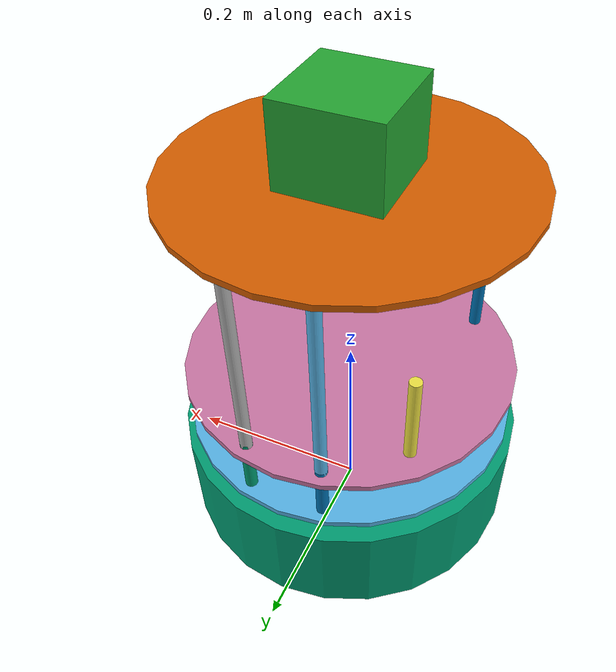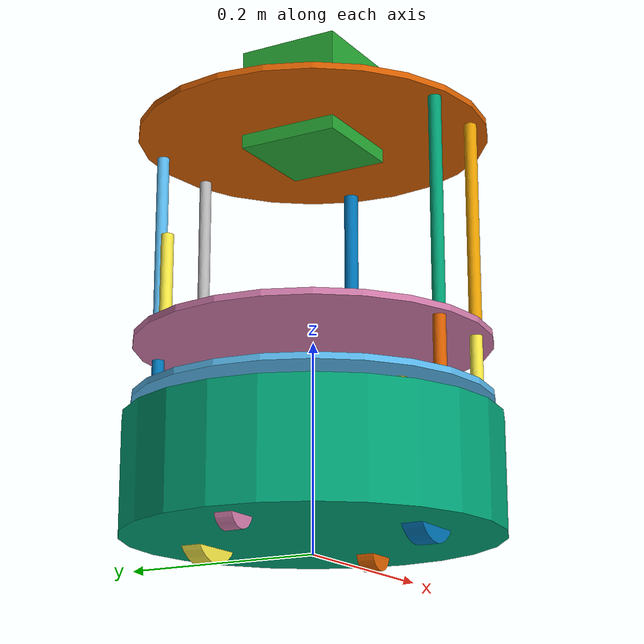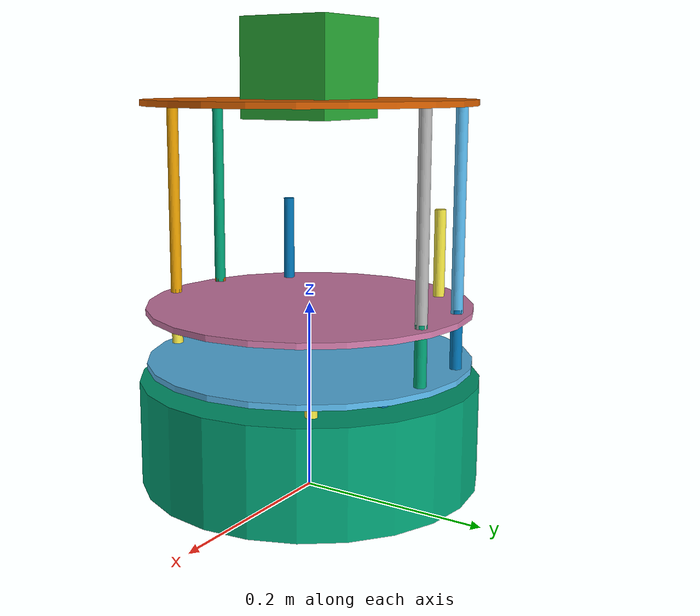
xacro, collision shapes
<?xml version="1.0"?>
<!--
    - Base      : kobuki
    - Stacks    : hexagons
    - 3d Sensor : sensor_asus_xtion_pro
-->
<robot name="turtlebot" xmlns:xacro="http://ros.org/wiki/xacro">

  <xacro:include filename="$(find turtlebot_description)/urdf/turtlebot_library.urdf.xacro" />

  <kobuki/>
  <stack_hexagons                 parent="base_link"/>
  <sensor_asus_xtion_pro          parent="base_link"/>
</robot>

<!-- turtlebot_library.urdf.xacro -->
<!--
  The complete turtlebot library of xacros for easy reference
 -->
<robot xmlns:xacro="http://ros.org/wiki/xacro">
  <!-- General -->
  <xacro:include filename="$(find turtlebot_description)/urdf/common_properties.urdf.xacro"/>
  <!-- Bases -->
  <xacro:include filename="$(find turtlebot_description)/urdf/bases/create.urdf.xacro"/>
  <xacro:include filename="$(find turtlebot_description)/urdf/bases/kobuki.urdf.xacro" />
  <!-- Stacks -->
  <xacro:include filename="$(find turtlebot_description)/urdf/stacks/circles.urdf.xacro"/>
  <xacro:include filename="$(find turtlebot_description)/urdf/stacks/hexagons.urdf.xacro"/>
  <!-- 3D Sensors -->
  <xacro:include filename="$(find turtlebot_description)/urdf/sensors/kinect.urdf.xacro"/>
  <xacro:include filename="$(find turtlebot_description)/urdf/sensors/asus_xtion_pro.urdf.xacro"/>
  <xacro:include filename="$(find turtlebot_description)/urdf/sensors/asus_xtion_pro_offset.urdf.xacro"/>
  <xacro:include filename="$(find turtlebot_description)/urdf/sensors/realsense_d435.urdf.xacro"/>
</robot>

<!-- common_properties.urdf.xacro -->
<!--
  Various useful properties such as constants and materials
 -->
<robot name="xacro_properties" xmlns:xacro="http://ros.org/wiki/xacro">
<!--
    These properties must be observed by any machine
    that wants to be defined as a turtlebot. Refer
    to the REP for more details.

    http://www.ros.org/reps/rep-0119.html
   -->

	<xacro:property name="cam_px" value="-0.087" />
	<xacro:property name="cam_pz" value="0.2870" />
	<xacro:property name="cam_or" value="0" />
	<xacro:property name="cam_op" value="0" />
	<xacro:property name="cam_oy" value="0" />

  <xacro:property name="M_PI" value="3.1415926535897931" />
  <xacro:property name="material_white">
    <material name="white">
      <color rgba="1 1 1 1"/>
    </material>
  </xacro:property>
  <xacro:property name="material_grey">
    <material name="grey">
      <color rgba="0.5 0.5 0.5 1"/>
    </material>
  </xacro:property>
  <xacro:property name="material_light_grey">
    <material name="light_grey">
      <color rgba="0.6 0.6 0.6 1"/>
    </material>
  </xacro:property>
  <xacro:property name="material_dark_grey">
    <material name="dark_grey">
      <color rgba="0.3 0.3 0.3 1"/>
    </material>
  </xacro:property>
  <xacro:property name="material_black">
    <material name="black">
      <color rgba="0.1 0.1 0.1 1"/>
    </material>
  </xacro:property>
  <xacro:property name="material_red">
    <material name="red">
      <color rgba="1 0 0 1"/>
    </material>
  </xacro:property>
  <xacro:property name="material_green">
    <material name="green">
      <color rgba="0.0 0.8 0.0 1"/>
    </material>
  </xacro:property>
  <xacro:property name="material_blue">
    <material name="blue">
      <color rgba="0.0 0.0 1.0 1"/>
    </material>
  </xacro:property>
  <xacro:property name="material_grey_blue">
    <material name="grey_blue">
      <color rgba="0.4 0.4 1.0 1"/>
    </material>
  </xacro:property>
  <xacro:property name="material_orange">
    <material name="orange">
      <color rgba="1.0 0.7 0.0 1"/>
    </material>
  </xacro:property>
</robot>

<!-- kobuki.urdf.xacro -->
<robot name="kobuki" xmlns:xacro="http://ros.org/wiki/xacro">
  <xacro:include filename="$(find turtlebot_description)/urdf/bases/kobuki_gazebo.urdf.xacro"/>

  <!-- Kobuki -->
  <xacro:macro name="kobuki">
    <link name="base_footprint"/>
    <joint name="laser_sensor_joint" type="fixed">
    	<origin xyz="0.0 0.0 0.430" rpy="0 0 0"/>
    	<parent link="base_link"/>
    	<child link="laser_sensor_link"/>
    </joint>
    <link name="laser_sensor_link">
	    <inertial>
		    <mass value="1e-5"/>
		    <origin xyz="0 0 0" rpy="0 0 0"/>
		    <inertia ixx="1e-6" ixy="0" ixz="0" iyy="1e-6" iyz="0" izz="1e-6"/>
	    </inertial>
	    <collision>
		    <origin xyz="0 0 0" rpy="0 0 0"/>
		    <geometry>
			    <box size="0.1 0.1 0.1"/>
		    </geometry>
	    </collision>
	    <visual>
		    <origin xyz="0 0 -0.03" rpy="1.570796 0 -1.570796"/>
		    <geometry>
          <mesh filename="package://turtlebot_description/meshes/sensors/rplidar.dae" scale="0.001 0.001 0.001" />
        </geometry>
        <material name="Green" />
	    </visual>
    </link>

    <joint name="base_joint" type="fixed">
      <origin xyz="0 0 0.0102" rpy="0 0 0" />
      <parent link="base_footprint"/>
      <child link="base_link" />
    </joint>
    <link name="base_link">
      <visual>
        <geometry>
          <!-- new mesh -->
          <mesh filename="package://turtlebot_description/meshes/kobuki_body.dae" />
        </geometry>
        <origin xyz="0.001 0 0.05199" rpy="0 0 0"/>
      </visual>
      <collision>
        <geometry>
          <cylinder length="0.10938" radius="0.178"/>
        </geometry>
        <origin xyz="0.0 0 0.05949" rpy="0 0 0"/>
      </collision>
      <inertial>
        <!-- COM experimentally determined -->
        <origin xyz="0.01 0 0"/>
        <mass value="2.4"/> <!-- 2.4/2.6 kg for small/big battery pack -->
        <inertia ixx="0.019995" ixy="0.0" ixz="0.0"
                 iyy="0.019995" iyz="0.0"
                 izz="0.03675" />
      </inertial>
    </link>

    <joint name="wheel_left_joint" type="continuous">
      <parent link="base_link"/>
      <child link="wheel_left_link"/>
      <origin xyz="0.00 ${0.23/2} 0.0250" rpy="${-M_PI/2} 0 0"/>
      <axis xyz="0 0 1"/>
    </joint>
    <link name="wheel_left_link">
      <visual>
        <geometry>
          <mesh filename="package://turtlebot_description/meshes/kobuki_wheel.dae"/>
        </geometry>
        <origin xyz="0 0 0" rpy="0 0 0"/>
      </visual>
      <collision>
        <geometry>
          <cylinder length="0.0206" radius="0.0352"/>
        </geometry>
        <origin rpy="0 0 0" xyz="0 0 0"/>
      </collision>
      <inertial>
        <mass value="0.01" />
        <origin xyz="0 0 0" />
        <inertia ixx="0.001" ixy="0.0" ixz="0.0"
                 iyy="0.001" iyz="0.0"
                 izz="0.001" />
      </inertial>
    </link>

    <joint name="wheel_right_joint" type="continuous">
      <parent link="base_link"/>
      <child link="wheel_right_link"/>
      <origin xyz="0.00 -${0.23/2} 0.0250" rpy="${-M_PI/2} 0 0"/>
      <axis xyz="0 0 1"/>
    </joint>
    <link name="wheel_right_link">
      <visual>
        <geometry>
          <mesh filename="package://turtlebot_description/meshes/kobuki_wheel.dae"/>
        </geometry>
        <origin xyz="0 0 0" rpy="0 0 0"/>
      </visual>
      <collision>
        <geometry>
          <cylinder length="0.0206" radius="0.0350"/>
        </geometry>
        <origin rpy="0 0 0" xyz="0 0 0"/>
      </collision>
      <inertial>
        <mass value="0.01" />
        <origin xyz="0 0 0" />
        <inertia ixx="0.001" ixy="0.0" ixz="0.0"
                 iyy="0.001" iyz="0.0"
                 izz="0.001" />
      </inertial>
    </link>

    <joint name="caster_front_joint" type="fixed">
      <parent link="base_link"/>
      <child link="caster_front_link"/>
      <origin xyz="0.115 0.0 0.007" rpy="${-M_PI/2} 0 0"/>
    </joint>
    <link name="caster_front_link">
      <collision>
        <geometry>
          <cylinder length="0.0176" radius="0.017"/>
        </geometry>
        <origin rpy="0 0 0" xyz="0 0 0"/>
      </collision>
      <inertial>
        <mass value="0.01" />
        <origin xyz="0 0 0" />
        <inertia ixx="0.001" ixy="0.0" ixz="0.0"
                 iyy="0.001" iyz="0.0"
                 izz="0.001" />
      </inertial>
    </link>

    <joint name="caster_back_joint" type="fixed">
      <parent link="base_link"/>
      <child link="caster_back_link"/>
      <origin xyz="-0.135 0.0 0.009" rpy="${-M_PI/2} 0 0"/>
    </joint>
    <link name="caster_back_link">
      <collision>
        <geometry>
          <cylinder length="0.0176" radius="0.017"/>
        </geometry>
        <origin rpy="0 0 0" xyz="0 0 0"/>
      </collision>
      <inertial>
        <mass value="0.01" />
        <origin xyz="0 0 0" />
        <inertia ixx="0.001" ixy="0.0" ixz="0.0"
                 iyy="0.001" iyz="0.0"
                 izz="0.001" />
      </inertial>
    </link>

    <!-- Kobuki's sensors -->
    <joint name="gyro_joint" type="fixed">
      <axis xyz="0 1 0"/>
      <origin xyz="0.056 0.062 0.0202" rpy="0 0 0"/>
      <parent link="base_link"/>
      <child link="gyro_link"/>
    </joint>
    <link name="gyro_link">
      <inertial>
        <mass value="0.001"/>
        <origin xyz="0 0 0" rpy="0 0 0"/>
        <inertia ixx="0.0001" ixy="0" ixz="0"
                 iyy="0.000001" iyz="0"
                 izz="0.0001"/>
      </inertial>
    </link>

    <joint name="cliff_sensor_left_joint" type="fixed">
      <origin xyz="0.08734 0.13601 0.0214" rpy="0 ${M_PI/2} 0" />
      <parent link="base_link"/>
      <child link="cliff_sensor_left_link" />
    </joint>
    <link name="cliff_sensor_left_link">
      <inertial>
        <mass value="0.0001" />
        <origin xyz="0 0 0" />
        <inertia ixx="0.0001" ixy="0.0" ixz="0.0"
                 iyy="0.0001" iyz="0.0"
                 izz="0.0001" />
      </inertial>
    </link>

    <joint name="cliff_sensor_right_joint" type="fixed">
      <origin xyz="0.085 -0.13601 0.0214" rpy="0 ${M_PI/2} 0" />
      <parent link="base_link"/>
      <child link="cliff_sensor_right_link" />
    </joint>
    <link name="cliff_sensor_right_link">
      <inertial>
        <mass value="0.0001" />
        <origin xyz="0 0 0" />
        <inertia ixx="0.0001" ixy="0.0" ixz="0.0"
                 iyy="0.0001" iyz="0.0"
                 izz="0.0001" />
      </inertial>
    </link>

    <joint name="cliff_sensor_front_joint" type="fixed">
      <origin xyz="0.156 0.00 0.0214" rpy="0 ${M_PI/2} 0" />
      <parent link="base_link"/>
      <child link="cliff_sensor_front_link" />
    </joint>
    <link name="cliff_sensor_front_link">
      <inertial>
        <mass value="0.0001" />
        <origin xyz="0 0 0" />
        <inertia ixx="0.0001" ixy="0.0" ixz="0.0"
                 iyy="0.0001" iyz="0.0"
                 izz="0.0001" />
      </inertial>
    </link>

    <!-- Kobuki Gazebo simulation details -->
    <kobuki_sim/>

  </xacro:macro>
</robot>

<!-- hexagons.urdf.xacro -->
<!--
  Hexagon stacks
 -->
<robot name="stack_hexagons" xmlns:xacro="http://ros.org/wiki/xacro">

  <!-- Xacro properties -->
  <xacro:property name="M_SCALE" value="0.001"/>

  <!-- Xacro macros -->
  <!-- Pole macros -->
  <xacro:macro name="stack_bottom_pole" params="parent number x_loc y_loc z_loc">
    <joint name="pole_bottom_${number}_joint" type="fixed">
      <origin xyz="${x_loc} ${y_loc} ${z_loc}" rpy="0 0 0"/>
      <parent link="${parent}"/>
      <child link="pole_bottom_${number}_link"/>
    </joint>
    <link name="pole_bottom_${number}_link">
      <visual>
        <origin xyz="0 0 0" rpy="0 0 0"/>
        <geometry>
          <mesh filename="package://turtlebot_description/meshes/stacks/hexagons/pole_bottom.dae"/>
        </geometry>
      </visual>
      <collision>
        <origin xyz="0 0 0" rpy="0 0 0"/>
        <geometry>
          <cylinder length="0.0492" radius="0.006"/>
        </geometry>
      </collision>
      <inertial>
        <mass value="0.008"/>
        <origin xyz="0 0 0" rpy="0 0 0"/>
        <inertia ixx="0.000001686" ixy="0.0" ixz="0.0"
                 iyy="0.000001686" iyz="0.0"
                 izz="0.000000144"/>
      </inertial>
    </link>
  </xacro:macro>

  <xacro:macro name="stack_middle_pole" params="parent number x_loc y_loc z_loc">
    <joint name="pole_middle_${number}_joint" type="fixed">
      <origin xyz="${x_loc} ${y_loc} ${z_loc}" rpy="0 0 0" />
      <parent link="${parent}"/>
      <child link="pole_middle_${number}_link"/>
    </joint>
    <link name="pole_middle_${number}_link">
      <visual>
        <origin xyz="0 0 0" rpy="0 ${M_PI} 0"/>
        <geometry>
          <mesh filename="package://turtlebot_description/meshes/stacks/hexagons/pole_middle.dae"/>
        </geometry>
      </visual>
      <collision>
        <origin xyz="0 0 0" rpy="0 0 0"/>
        <geometry>
          <cylinder length="0.0608" radius="0.006"/>
        </geometry>
      </collision>
      <inertial>
        <mass value="0.012"/>
        <origin xyz="0 0 0"/>
        <inertia ixx="0.000003805" ixy="0.0" ixz="0.0"
                 iyy="0.000003805" iyz="0.0"
                 izz="0.000000216"/>
      </inertial>
    </link>
  </xacro:macro>

  <xacro:macro name="stack_top_pole" params="parent number x_loc y_loc z_loc">
    <joint name="pole_top_${number}_joint" type="fixed">
      <origin xyz="${x_loc} ${y_loc} ${z_loc}" rpy="0 0 0"/>
      <parent link="${parent}"/>
      <child link="pole_top_${number}_link"/>
    </joint>
    <link name="pole_top_${number}_link">
      <visual>
        <origin xyz=" 0 0 0" rpy="0 0 0"/>
        <geometry>
          <mesh filename="package://turtlebot_description/meshes/stacks/hexagons/pole_top.dae"/>
        </geometry>
      </visual>
      <collision>
        <origin xyz="0 0 0" rpy="0 0 0"/>
        <geometry>
          <cylinder length="0.2032" radius="0.006"/>
        </geometry>
      </collision>
      <inertial>
        <mass value="0.060"/>
        <origin xyz="0 0 0"/>
        <inertia ixx="0.000206991" ixy="0.0" ixz="0.0"
                 iyy="0.000206991" iyz="0.0"
                 izz="0.000001080"/>
      </inertial>
    </link>
  </xacro:macro>

  <xacro:macro name="stack_3d_sensor_pole" params="parent number x_loc y_loc z_loc">
    <joint name="pole_kinect_${number}_joint" type="fixed">
      <origin xyz="${x_loc} ${y_loc} ${z_loc}" rpy="0 0 0"/>
      <parent link="${parent}"/>
      <child link="pole_kinect_${number}_link"/>
    </joint>
    <link name="pole_kinect_${number}_link">
      <visual>
        <origin xyz="0 0 -0.01" rpy="0 0 0"/>
        <geometry>
          <mesh filename="package://turtlebot_description/meshes/sensors/sensor_pole.dae" />
        </geometry>
      </visual>
      <collision>
        <origin xyz="0 0 0" rpy="0 0 0"/>
        <geometry>
          <cylinder length="0.0936" radius="0.006"/>
        </geometry>
      </collision>
      <inertial>
        <mass value="0.020"/>
        <origin xyz="0 0 0"/>
        <inertia ixx="0.000014782" ixy="0.0" ixz="0.0"
                 iyy="0.000014782" iyz="0.0"
                 izz="0.000000360"/>
      </inertial>
    </link>
  </xacro:macro>

  <xacro:macro name="stack_hexagons" params="parent">
    <stack_bottom_pole parent="${parent}" number="0" x_loc= "0.120" y_loc= "0.082" z_loc="0.1028"/>
    <stack_bottom_pole parent="${parent}" number="1" x_loc= "0.055" y_loc= "0.120" z_loc="0.1028"/>
    <stack_bottom_pole parent="${parent}" number="2" x_loc="-0.055" y_loc= "0.120" z_loc="0.1028"/>
    <stack_bottom_pole parent="${parent}" number="3" x_loc= "0.120" y_loc="-0.082" z_loc="0.1028"/>
    <stack_bottom_pole parent="${parent}" number="4" x_loc= "0.055" y_loc="-0.120" z_loc="0.1028"/>
    <stack_bottom_pole parent="${parent}" number="5" x_loc="-0.055" y_loc="-0.120" z_loc="0.1028"/>

    <joint name="plate_bottom_joint" type="fixed">
      <origin xyz="0.02364 0.0 0.1306" rpy="0 0 0"/>
      <parent link="${parent}"/>
      <child link="plate_bottom_link"/>
    </joint>
    <link name="plate_bottom_link">
      <visual>
        <origin xyz="0 0 0" rpy="0 0 0"/>
        <geometry>
          <mesh filename="package://turtlebot_description/meshes/stacks/hexagons/plate_bottom.dae"/>
        </geometry>
      </visual>
      <collision>
        <origin xyz="-0.02364 0 0" rpy="0 0 0"/>
        <geometry>
          <cylinder length="0.006" radius="0.170"/>
        </geometry>
      </collision>
      <inertial>
        <mass value="0.520" />
        <origin xyz="0 0 0" />
        <inertia ixx="0.003328" ixy="0.0" ixz="0.0"
                 iyy="0.003328" iyz="0.0"
                 izz="0.006656" />
      </inertial>
    </link>

    <stack_middle_pole parent="${parent}" number="0" x_loc= "0.0381" y_loc= "0.1505" z_loc="0.1640"/>
    <stack_middle_pole parent="${parent}" number="1" x_loc= "0.0381" y_loc="-0.1505" z_loc="0.1640"/>
    <stack_middle_pole parent="${parent}" number="2" x_loc="-0.0381" y_loc= "0.1505" z_loc="0.1640"/>
    <stack_middle_pole parent="${parent}" number="3" x_loc="-0.0381" y_loc="-0.1505" z_loc="0.1640"/>

    <joint name="plate_middle_joint" type="fixed">
      <origin xyz="-0.01364 0.0 0.1874" rpy="0 0 0"/>
      <parent link="${parent}"/>
      <child link="plate_middle_link"/>
    </joint>
    <link name="plate_middle_link">
      <visual>
        <origin xyz="0 0 0" rpy="0 0 0"/>
        <geometry>
          <mesh filename="package://turtlebot_description/meshes/stacks/hexagons/plate_middle.dae"/>
        </geometry>
      </visual>
      <collision>
        <origin xyz="0.01364 0.0 0.0" rpy="0 0 0"/>
        <geometry>
          <cylinder length="0.006" radius="0.170"/>
        </geometry>
      </collision>
      <inertial>
        <mass value="0.520" />
        <origin xyz="0 0 0" />
        <inertia ixx="0.003328" ixy="0.0" ixz="0.0"
                 iyy="0.003328" iyz="0.0"
                 izz="0.006656" />
      </inertial>
    </link>

    <stack_top_pole parent="${parent}" number="0" x_loc= "0.0381" y_loc= "0.1505" z_loc="0.2920"/>
    <stack_top_pole parent="${parent}" number="1" x_loc= "0.0381" y_loc="-0.1505" z_loc="0.2920"/>
    <stack_top_pole parent="${parent}" number="2" x_loc="-0.0381" y_loc= "0.1505" z_loc="0.2920"/>
    <stack_top_pole parent="${parent}" number="3" x_loc="-0.0381" y_loc="-0.1505" z_loc="0.2920"/>
    <stack_3d_sensor_pole parent="${parent}" number="0" x_loc="-0.1024" y_loc= "0.098" z_loc="0.2372"/>
    <stack_3d_sensor_pole parent="${parent}" number="1" x_loc="-0.1024" y_loc="-0.098" z_loc="0.2372"/>

    <joint name="plate_top_joint" type="fixed">
      <origin xyz="-0.01364 0.0  0.3966" rpy="0 0 0"/>
      <parent link="${parent}"/>
      <child link="plate_top_link"/>
    </joint>
    <link name="plate_top_link">
      <visual>
        <origin xyz="0 0 0" rpy="0 0 0"/>
        <geometry>
          <mesh filename="package://turtlebot_description/meshes/stacks/hexagons/plate_top.dae"/>
        </geometry>
      </visual>
      <collision>
        <origin xyz="0.01364 0 0" rpy="0 0 0"/>
        <geometry>
          <cylinder length="0.006" radius="0.170"/>
        </geometry>
      </collision>
      <inertial>
        <mass value="0.520"/>
        <origin xyz="0 0 0"/>
        <inertia ixx="0.003328" ixy="0.0" ixz="0.0"
                 iyy="0.003328" iyz="0.0"
                 izz="0.006656" />
      </inertial>
    </link>
  </xacro:macro>
</robot>

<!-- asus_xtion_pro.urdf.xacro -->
<robot name="sensor_asus_xtion_pro" xmlns:xacro="http://ros.org/wiki/xacro">
  <xacro:include filename="$(find turtlebot_description)/urdf/sensors/camera_gazebo.urdf.xacro"/>
  <xacro:include filename="$(find turtlebot_description)/urdf/sensors/laser_gazebo.urdf.xacro"/>

  <!-- Xacro properties -->
  <xacro:property name="M_SCALE" value="0.001"/>
  <xacro:property name="asus_xtion_pro_cam_py" value="0.0205"/>
  <xacro:property name="asus_xtion_pro_depth_rel_rgb_py" value="0.0270" />
  <xacro:property name="asus_xtion_pro_cam_rel_rgb_py"   value="-0.0220" />

  <!-- Parameterised in part by the values in turtlebot_properties.urdf.xacro -->
  <xacro:macro name="sensor_asus_xtion_pro" params="parent">
    <joint name="camera_rgb_joint" type="fixed">
      <origin xyz="${cam_px} ${asus_xtion_pro_cam_py} ${cam_pz}"
              rpy="${cam_or} ${cam_op} ${cam_oy}"/>
      <parent link="${parent}"/>
      <child link="camera_rgb_frame" />
    </joint>

    <link name="camera_rgb_frame"/>

    <joint name="camera_rgb_optical_joint" type="fixed">
      <origin xyz="0 0 0" rpy="${-M_PI/2} 0 ${-M_PI/2}" />
      <parent link="camera_rgb_frame" />
      <child link="camera_rgb_optical_frame" />
    </joint>

    <link name="camera_rgb_optical_frame"/>

    <joint name="camera_joint" type="fixed">
      <origin xyz="0 ${asus_xtion_pro_cam_rel_rgb_py} 0"
              rpy="0 0 0"/>
      <parent link="camera_rgb_frame"/>
      <child link="camera_link"/>
    </joint>

    <link name="camera_link">
      <visual>
        <origin xyz="-0.015 0.0035 0.004" rpy="0 0 0"/>
        <geometry>
          <mesh filename="package://turtlebot_description/meshes/sensors/xtion_pro_camera.dae"/>
        </geometry>
      </visual>
      <collision>
        <origin xyz="0.0 0.0 0.0" rpy="0 0 0" />
        <geometry>
        <box size="0.0 0.0 0.0"/>
      </geometry>
      </collision>
      <inertial>
        <mass value="0.170" />
        <origin xyz="0 0 0" />
        <inertia ixx="0.001152600" ixy="0.0" ixz="0.0"
                 iyy="0.000148934" iyz="0.0"
                 izz="0.001154654" />
      </inertial>
    </link>

    <joint name="camera_depth_joint" type="fixed">
      <origin xyz="0 ${asus_xtion_pro_depth_rel_rgb_py} 0" rpy="0 0 0" />
      <parent link="camera_rgb_frame" />
      <child link="camera_depth_frame" />
    </joint>
    <link name="camera_depth_frame"/>

    <joint name="camera_depth_optical_joint" type="fixed">
      <origin xyz="0 0 0" rpy="${-M_PI/2} 0 ${-M_PI/2}" />
      <parent link="camera_depth_frame" />
      <child link="camera_depth_optical_frame" />
    </joint>
    <link name="camera_depth_optical_frame"/>

    <!-- RGBD sensor for simulation, same as Kinect -->
    <turtlebot_sim_3dsensor/>
    <turtlebot_sim_laser/>

    <!-- Asus mount -->
    <joint name="mount_asus_xtion_pro_joint" type="fixed">
      <origin xyz="-0.1024 0.0 0.272" rpy="0 0 0"/>
      <parent link="${parent}"/>
      <child link="mount_asus_xtion_pro_link"/>
    </joint>
    <link name="mount_asus_xtion_pro_link">
      <visual>
        <origin xyz="0 0 0" rpy="${-M_PI/2} 0 0"/>
        <geometry>
          <mesh filename="package://turtlebot_description/meshes/sensors/xtion_pro_stack.dae"/>
        </geometry>
      </visual>
      <collision>
        <origin xyz="0.0 0.0 0.0" rpy="0 0 0" />
        <geometry>
        <box size="0.0 0.0 0.0"/>
      </geometry>
      </collision>
      <inertial>
        <mass value="0.170" />
        <origin xyz="0 0 0" />
        <inertia ixx="0.001152600" ixy="0.0" ixz="0.0"
                 iyy="0.000148934" iyz="0.0"
                 izz="0.001154654" />
      </inertial>
    </link>
  </xacro:macro>
</robot>
